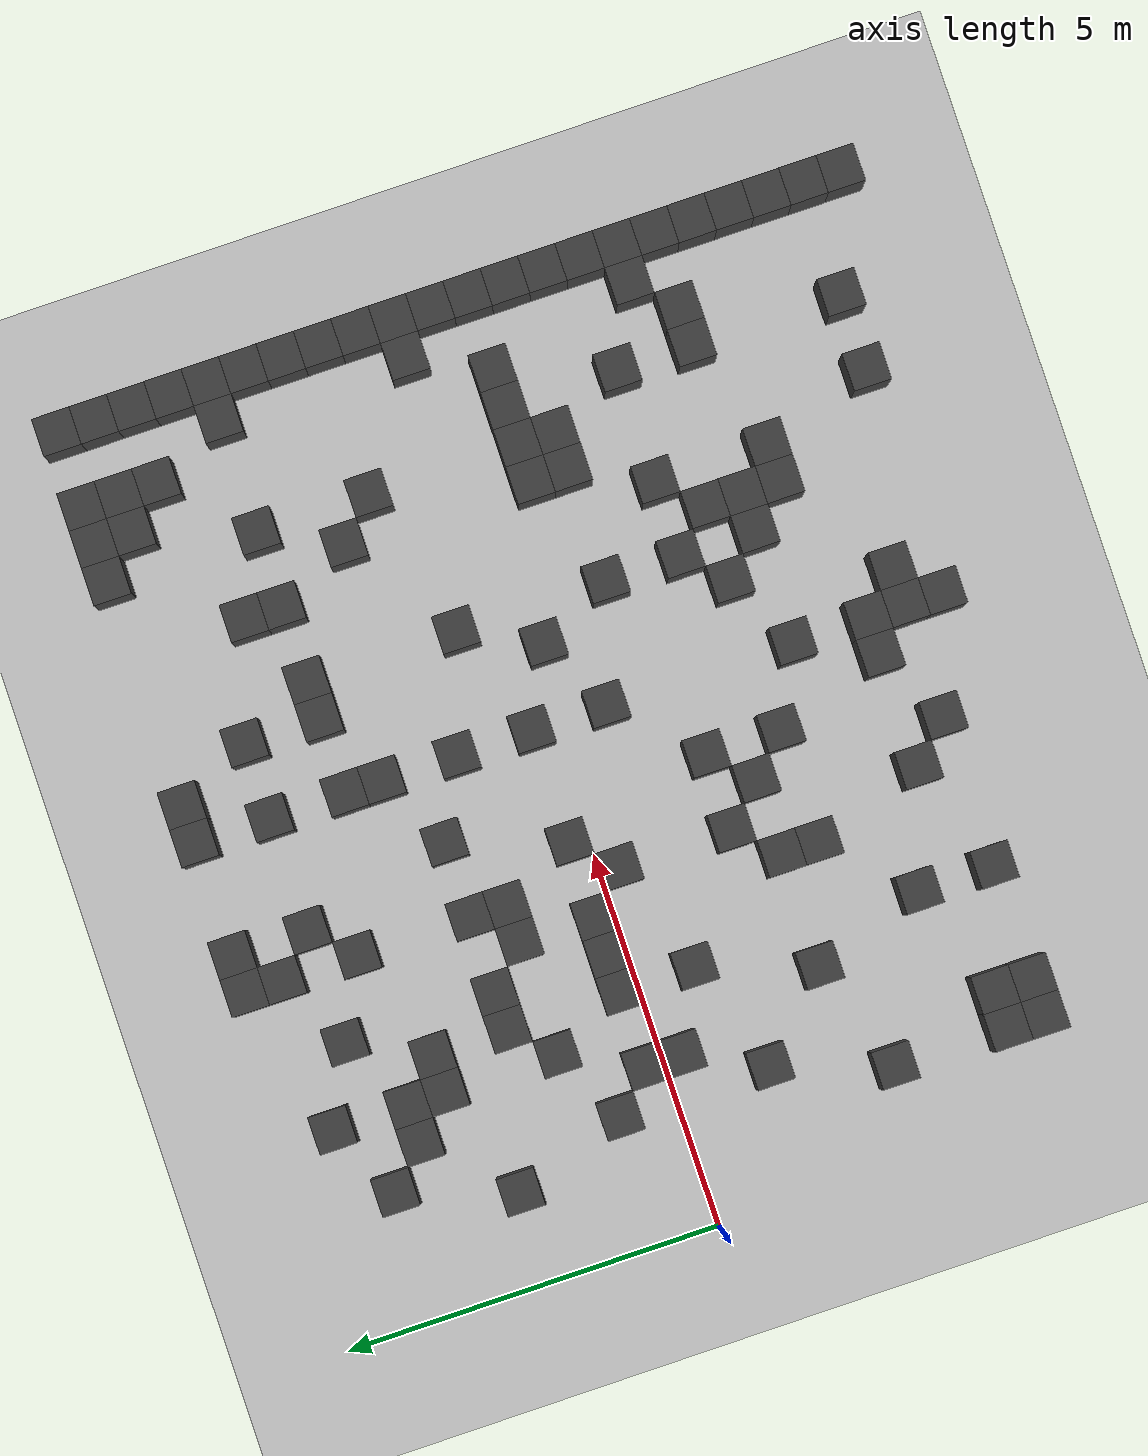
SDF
<sdf version="1.7">
 <world name="map_4818">
  <model name="ground_plane">
   <static>true</static>
   <link name="link">
    <collision name="collision">
     <geometry><plane><normal>0 0 1</normal><size>200 200</size></plane></geometry>
    </collision>
    <visual name="visual">
     <geometry><plane><normal>0 0 1</normal><size>200 200</size></plane></geometry>
     <material><ambient>0.8 0.8 0.8 1</ambient><diffuse>0.8 0.8 0.8 1</diffuse></material>
    </visual>
   </link>
  </model>
  <model name="maze_environment">
   <static>true</static>
   <link name="wall_242">
    <pose>4.750 4.750 0.500 0 0 0</pose>
    <collision name="col"><geometry><box><size>0.5 0.5 1.0</size></box></geometry></collision>
    <visual name="vis">
     <geometry><box><size>0.5 0.5 1.0</size></box></geometry>
     <material><ambient>0.15 0.15 0.15 1</ambient><diffuse>0.25 0.25 0.25 1</diffuse></material>
    </visual>
   </link>
   <link name="wall_243">
    <pose>5.250 4.750 0.500 0 0 0</pose>
    <collision name="col"><geometry><box><size>0.5 0.5 1.0</size></box></geometry></collision>
    <visual name="vis">
     <geometry><box><size>0.5 0.5 1.0</size></box></geometry>
     <material><ambient>0.15 0.15 0.15 1</ambient><diffuse>0.25 0.25 0.25 1</diffuse></material>
    </visual>
   </link>
   <link name="wall_244">
    <pose>6.750 4.750 0.500 0 0 0</pose>
    <collision name="col"><geometry><box><size>0.5 0.5 1.0</size></box></geometry></collision>
    <visual name="vis">
     <geometry><box><size>0.5 0.5 1.0</size></box></geometry>
     <material><ambient>0.15 0.15 0.15 1</ambient><diffuse>0.25 0.25 0.25 1</diffuse></material>
    </visual>
   </link>
   <link name="wall_245">
    <pose>7.250 4.750 0.500 0 0 0</pose>
    <collision name="col"><geometry><box><size>0.5 0.5 1.0</size></box></geometry></collision>
    <visual name="vis">
     <geometry><box><size>0.5 0.5 1.0</size></box></geometry>
     <material><ambient>0.15 0.15 0.15 1</ambient><diffuse>0.25 0.25 0.25 1</diffuse></material>
    </visual>
   </link>
   <link name="wall_246">
    <pose>10.250 4.750 0.500 0 0 0</pose>
    <collision name="col"><geometry><box><size>0.5 0.5 1.0</size></box></geometry></collision>
    <visual name="vis">
     <geometry><box><size>0.5 0.5 1.0</size></box></geometry>
     <material><ambient>0.15 0.15 0.15 1</ambient><diffuse>0.25 0.25 0.25 1</diffuse></material>
    </visual>
   </link>
   <link name="wall_247">
    <pose>10.750 4.750 0.500 0 0 0</pose>
    <collision name="col"><geometry><box><size>0.5 0.5 1.0</size></box></geometry></collision>
    <visual name="vis">
     <geometry><box><size>0.5 0.5 1.0</size></box></geometry>
     <material><ambient>0.15 0.15 0.15 1</ambient><diffuse>0.25 0.25 0.25 1</diffuse></material>
    </visual>
   </link>
   <link name="wall_248">
    <pose>11.250 4.750 0.500 0 0 0</pose>
    <collision name="col"><geometry><box><size>0.5 0.5 1.0</size></box></geometry></collision>
    <visual name="vis">
     <geometry><box><size>0.5 0.5 1.0</size></box></geometry>
     <material><ambient>0.15 0.15 0.15 1</ambient><diffuse>0.25 0.25 0.25 1</diffuse></material>
    </visual>
   </link>
   <link name="wall_249">
    <pose>12.250 4.750 0.500 0 0 0</pose>
    <collision name="col"><geometry><box><size>0.5 0.5 1.0</size></box></geometry></collision>
    <visual name="vis">
     <geometry><box><size>0.5 0.5 1.0</size></box></geometry>
     <material><ambient>0.15 0.15 0.15 1</ambient><diffuse>0.25 0.25 0.25 1</diffuse></material>
    </visual>
   </link>
   <link name="wall_258">
    <pose>2.750 4.250 0.500 0 0 0</pose>
    <collision name="col"><geometry><box><size>0.5 0.5 1.0</size></box></geometry></collision>
    <visual name="vis">
     <geometry><box><size>0.5 0.5 1.0</size></box></geometry>
     <material><ambient>0.15 0.15 0.15 1</ambient><diffuse>0.25 0.25 0.25 1</diffuse></material>
    </visual>
   </link>
   <link name="wall_259">
    <pose>4.750 4.250 0.500 0 0 0</pose>
    <collision name="col"><geometry><box><size>0.5 0.5 1.0</size></box></geometry></collision>
    <visual name="vis">
     <geometry><box><size>0.5 0.5 1.0</size></box></geometry>
     <material><ambient>0.15 0.15 0.15 1</ambient><diffuse>0.25 0.25 0.25 1</diffuse></material>
    </visual>
   </link>
   <link name="wall_260">
    <pose>10.750 4.250 0.500 0 0 0</pose>
    <collision name="col"><geometry><box><size>0.5 0.5 1.0</size></box></geometry></collision>
    <visual name="vis">
     <geometry><box><size>0.5 0.5 1.0</size></box></geometry>
     <material><ambient>0.15 0.15 0.15 1</ambient><diffuse>0.25 0.25 0.25 1</diffuse></material>
    </visual>
   </link>
   <link name="wall_261">
    <pose>11.250 4.250 0.500 0 0 0</pose>
    <collision name="col"><geometry><box><size>0.5 0.5 1.0</size></box></geometry></collision>
    <visual name="vis">
     <geometry><box><size>0.5 0.5 1.0</size></box></geometry>
     <material><ambient>0.15 0.15 0.15 1</ambient><diffuse>0.25 0.25 0.25 1</diffuse></material>
    </visual>
   </link>
   <link name="wall_262">
    <pose>12.250 4.250 0.500 0 0 0</pose>
    <collision name="col"><geometry><box><size>0.5 0.5 1.0</size></box></geometry></collision>
    <visual name="vis">
     <geometry><box><size>0.5 0.5 1.0</size></box></geometry>
     <material><ambient>0.15 0.15 0.15 1</ambient><diffuse>0.25 0.25 0.25 1</diffuse></material>
    </visual>
   </link>
   <link name="wall_272">
    <pose>1.750 3.750 0.500 0 0 0</pose>
    <collision name="col"><geometry><box><size>0.5 0.5 1.0</size></box></geometry></collision>
    <visual name="vis">
     <geometry><box><size>0.5 0.5 1.0</size></box></geometry>
     <material><ambient>0.15 0.15 0.15 1</ambient><diffuse>0.25 0.25 0.25 1</diffuse></material>
    </visual>
   </link>
   <link name="wall_273">
    <pose>3.750 3.750 0.500 0 0 0</pose>
    <collision name="col"><geometry><box><size>0.5 0.5 1.0</size></box></geometry></collision>
    <visual name="vis">
     <geometry><box><size>0.5 0.5 1.0</size></box></geometry>
     <material><ambient>0.15 0.15 0.15 1</ambient><diffuse>0.25 0.25 0.25 1</diffuse></material>
    </visual>
   </link>
   <link name="wall_274">
    <pose>5.250 3.750 0.500 0 0 0</pose>
    <collision name="col"><geometry><box><size>0.5 0.5 1.0</size></box></geometry></collision>
    <visual name="vis">
     <geometry><box><size>0.5 0.5 1.0</size></box></geometry>
     <material><ambient>0.15 0.15 0.15 1</ambient><diffuse>0.25 0.25 0.25 1</diffuse></material>
    </visual>
   </link>
   <link name="wall_275">
    <pose>6.750 3.750 0.500 0 0 0</pose>
    <collision name="col"><geometry><box><size>0.5 0.5 1.0</size></box></geometry></collision>
    <visual name="vis">
     <geometry><box><size>0.5 0.5 1.0</size></box></geometry>
     <material><ambient>0.15 0.15 0.15 1</ambient><diffuse>0.25 0.25 0.25 1</diffuse></material>
    </visual>
   </link>
   <link name="wall_276">
    <pose>7.750 3.750 0.500 0 0 0</pose>
    <collision name="col"><geometry><box><size>0.5 0.5 1.0</size></box></geometry></collision>
    <visual name="vis">
     <geometry><box><size>0.5 0.5 1.0</size></box></geometry>
     <material><ambient>0.15 0.15 0.15 1</ambient><diffuse>0.25 0.25 0.25 1</diffuse></material>
    </visual>
   </link>
   <link name="wall_277">
    <pose>11.250 3.750 0.500 0 0 0</pose>
    <collision name="col"><geometry><box><size>0.5 0.5 1.0</size></box></geometry></collision>
    <visual name="vis">
     <geometry><box><size>0.5 0.5 1.0</size></box></geometry>
     <material><ambient>0.15 0.15 0.15 1</ambient><diffuse>0.25 0.25 0.25 1</diffuse></material>
    </visual>
   </link>
   <link name="wall_278">
    <pose>12.250 3.750 0.500 0 0 0</pose>
    <collision name="col"><geometry><box><size>0.5 0.5 1.0</size></box></geometry></collision>
    <visual name="vis">
     <geometry><box><size>0.5 0.5 1.0</size></box></geometry>
     <material><ambient>0.15 0.15 0.15 1</ambient><diffuse>0.25 0.25 0.25 1</diffuse></material>
    </visual>
   </link>
   <link name="wall_281">
    <pose>2.250 3.250 0.500 0 0 0</pose>
    <collision name="col"><geometry><box><size>0.5 0.5 1.0</size></box></geometry></collision>
    <visual name="vis">
     <geometry><box><size>0.5 0.5 1.0</size></box></geometry>
     <material><ambient>0.15 0.15 0.15 1</ambient><diffuse>0.25 0.25 0.25 1</diffuse></material>
    </visual>
   </link>
   <link name="wall_282">
    <pose>2.750 3.250 0.500 0 0 0</pose>
    <collision name="col"><geometry><box><size>0.5 0.5 1.0</size></box></geometry></collision>
    <visual name="vis">
     <geometry><box><size>0.5 0.5 1.0</size></box></geometry>
     <material><ambient>0.15 0.15 0.15 1</ambient><diffuse>0.25 0.25 0.25 1</diffuse></material>
    </visual>
   </link>
   <link name="wall_283">
    <pose>4.750 3.250 0.500 0 0 0</pose>
    <collision name="col"><geometry><box><size>0.5 0.5 1.0</size></box></geometry></collision>
    <visual name="vis">
     <geometry><box><size>0.5 0.5 1.0</size></box></geometry>
     <material><ambient>0.15 0.15 0.15 1</ambient><diffuse>0.25 0.25 0.25 1</diffuse></material>
    </visual>
   </link>
   <link name="wall_284">
    <pose>9.250 3.250 0.500 0 0 0</pose>
    <collision name="col"><geometry><box><size>0.5 0.5 1.0</size></box></geometry></collision>
    <visual name="vis">
     <geometry><box><size>0.5 0.5 1.0</size></box></geometry>
     <material><ambient>0.15 0.15 0.15 1</ambient><diffuse>0.25 0.25 0.25 1</diffuse></material>
    </visual>
   </link>
   <link name="wall_285">
    <pose>12.250 3.250 0.500 0 0 0</pose>
    <collision name="col"><geometry><box><size>0.5 0.5 1.0</size></box></geometry></collision>
    <visual name="vis">
     <geometry><box><size>0.5 0.5 1.0</size></box></geometry>
     <material><ambient>0.15 0.15 0.15 1</ambient><diffuse>0.25 0.25 0.25 1</diffuse></material>
    </visual>
   </link>
   <link name="wall_290">
    <pose>2.750 2.750 0.500 0 0 0</pose>
    <collision name="col"><geometry><box><size>0.5 0.5 1.0</size></box></geometry></collision>
    <visual name="vis">
     <geometry><box><size>0.5 0.5 1.0</size></box></geometry>
     <material><ambient>0.15 0.15 0.15 1</ambient><diffuse>0.25 0.25 0.25 1</diffuse></material>
    </visual>
   </link>
   <link name="wall_291">
    <pose>3.250 2.750 0.500 0 0 0</pose>
    <collision name="col"><geometry><box><size>0.5 0.5 1.0</size></box></geometry></collision>
    <visual name="vis">
     <geometry><box><size>0.5 0.5 1.0</size></box></geometry>
     <material><ambient>0.15 0.15 0.15 1</ambient><diffuse>0.25 0.25 0.25 1</diffuse></material>
    </visual>
   </link>
   <link name="wall_292">
    <pose>6.750 2.750 0.500 0 0 0</pose>
    <collision name="col"><geometry><box><size>0.5 0.5 1.0</size></box></geometry></collision>
    <visual name="vis">
     <geometry><box><size>0.5 0.5 1.0</size></box></geometry>
     <material><ambient>0.15 0.15 0.15 1</ambient><diffuse>0.25 0.25 0.25 1</diffuse></material>
    </visual>
   </link>
   <link name="wall_293">
    <pose>7.750 2.750 0.500 0 0 0</pose>
    <collision name="col"><geometry><box><size>0.5 0.5 1.0</size></box></geometry></collision>
    <visual name="vis">
     <geometry><box><size>0.5 0.5 1.0</size></box></geometry>
     <material><ambient>0.15 0.15 0.15 1</ambient><diffuse>0.25 0.25 0.25 1</diffuse></material>
    </visual>
   </link>
   <link name="wall_294">
    <pose>8.250 2.750 0.500 0 0 0</pose>
    <collision name="col"><geometry><box><size>0.5 0.5 1.0</size></box></geometry></collision>
    <visual name="vis">
     <geometry><box><size>0.5 0.5 1.0</size></box></geometry>
     <material><ambient>0.15 0.15 0.15 1</ambient><diffuse>0.25 0.25 0.25 1</diffuse></material>
    </visual>
   </link>
   <link name="wall_295">
    <pose>9.250 2.750 0.500 0 0 0</pose>
    <collision name="col"><geometry><box><size>0.5 0.5 1.0</size></box></geometry></collision>
    <visual name="vis">
     <geometry><box><size>0.5 0.5 1.0</size></box></geometry>
     <material><ambient>0.15 0.15 0.15 1</ambient><diffuse>0.25 0.25 0.25 1</diffuse></material>
    </visual>
   </link>
   <link name="wall_296">
    <pose>10.250 2.750 0.500 0 0 0</pose>
    <collision name="col"><geometry><box><size>0.5 0.5 1.0</size></box></geometry></collision>
    <visual name="vis">
     <geometry><box><size>0.5 0.5 1.0</size></box></geometry>
     <material><ambient>0.15 0.15 0.15 1</ambient><diffuse>0.25 0.25 0.25 1</diffuse></material>
    </visual>
   </link>
   <link name="wall_297">
    <pose>11.750 2.750 0.500 0 0 0</pose>
    <collision name="col"><geometry><box><size>0.5 0.5 1.0</size></box></geometry></collision>
    <visual name="vis">
     <geometry><box><size>0.5 0.5 1.0</size></box></geometry>
     <material><ambient>0.15 0.15 0.15 1</ambient><diffuse>0.25 0.25 0.25 1</diffuse></material>
    </visual>
   </link>
   <link name="wall_298">
    <pose>12.250 2.750 0.500 0 0 0</pose>
    <collision name="col"><geometry><box><size>0.5 0.5 1.0</size></box></geometry></collision>
    <visual name="vis">
     <geometry><box><size>0.5 0.5 1.0</size></box></geometry>
     <material><ambient>0.15 0.15 0.15 1</ambient><diffuse>0.25 0.25 0.25 1</diffuse></material>
    </visual>
   </link>
   <link name="wall_305">
    <pose>1.250 2.250 0.500 0 0 0</pose>
    <collision name="col"><geometry><box><size>0.5 0.5 1.0</size></box></geometry></collision>
    <visual name="vis">
     <geometry><box><size>0.5 0.5 1.0</size></box></geometry>
     <material><ambient>0.15 0.15 0.15 1</ambient><diffuse>0.25 0.25 0.25 1</diffuse></material>
    </visual>
   </link>
   <link name="wall_306">
    <pose>6.750 2.250 0.500 0 0 0</pose>
    <collision name="col"><geometry><box><size>0.5 0.5 1.0</size></box></geometry></collision>
    <visual name="vis">
     <geometry><box><size>0.5 0.5 1.0</size></box></geometry>
     <material><ambient>0.15 0.15 0.15 1</ambient><diffuse>0.25 0.25 0.25 1</diffuse></material>
    </visual>
   </link>
   <link name="wall_307">
    <pose>12.250 2.250 0.500 0 0 0</pose>
    <collision name="col"><geometry><box><size>0.5 0.5 1.0</size></box></geometry></collision>
    <visual name="vis">
     <geometry><box><size>0.5 0.5 1.0</size></box></geometry>
     <material><ambient>0.15 0.15 0.15 1</ambient><diffuse>0.25 0.25 0.25 1</diffuse></material>
    </visual>
   </link>
   <link name="wall_314">
    <pose>3.250 1.750 0.500 0 0 0</pose>
    <collision name="col"><geometry><box><size>0.5 0.5 1.0</size></box></geometry></collision>
    <visual name="vis">
     <geometry><box><size>0.5 0.5 1.0</size></box></geometry>
     <material><ambient>0.15 0.15 0.15 1</ambient><diffuse>0.25 0.25 0.25 1</diffuse></material>
    </visual>
   </link>
   <link name="wall_315">
    <pose>3.750 1.750 0.500 0 0 0</pose>
    <collision name="col"><geometry><box><size>0.5 0.5 1.0</size></box></geometry></collision>
    <visual name="vis">
     <geometry><box><size>0.5 0.5 1.0</size></box></geometry>
     <material><ambient>0.15 0.15 0.15 1</ambient><diffuse>0.25 0.25 0.25 1</diffuse></material>
    </visual>
   </link>
   <link name="wall_316">
    <pose>4.750 1.750 0.500 0 0 0</pose>
    <collision name="col"><geometry><box><size>0.5 0.5 1.0</size></box></geometry></collision>
    <visual name="vis">
     <geometry><box><size>0.5 0.5 1.0</size></box></geometry>
     <material><ambient>0.15 0.15 0.15 1</ambient><diffuse>0.25 0.25 0.25 1</diffuse></material>
    </visual>
   </link>
   <link name="wall_317">
    <pose>5.750 1.750 0.500 0 0 0</pose>
    <collision name="col"><geometry><box><size>0.5 0.5 1.0</size></box></geometry></collision>
    <visual name="vis">
     <geometry><box><size>0.5 0.5 1.0</size></box></geometry>
     <material><ambient>0.15 0.15 0.15 1</ambient><diffuse>0.25 0.25 0.25 1</diffuse></material>
    </visual>
   </link>
   <link name="wall_318">
    <pose>9.750 1.750 0.500 0 0 0</pose>
    <collision name="col"><geometry><box><size>0.5 0.5 1.0</size></box></geometry></collision>
    <visual name="vis">
     <geometry><box><size>0.5 0.5 1.0</size></box></geometry>
     <material><ambient>0.15 0.15 0.15 1</ambient><diffuse>0.25 0.25 0.25 1</diffuse></material>
    </visual>
   </link>
   <link name="wall_319">
    <pose>12.250 1.750 0.500 0 0 0</pose>
    <collision name="col"><geometry><box><size>0.5 0.5 1.0</size></box></geometry></collision>
    <visual name="vis">
     <geometry><box><size>0.5 0.5 1.0</size></box></geometry>
     <material><ambient>0.15 0.15 0.15 1</ambient><diffuse>0.25 0.25 0.25 1</diffuse></material>
    </visual>
   </link>
   <link name="wall_329">
    <pose>2.750 1.250 0.500 0 0 0</pose>
    <collision name="col"><geometry><box><size>0.5 0.5 1.0</size></box></geometry></collision>
    <visual name="vis">
     <geometry><box><size>0.5 0.5 1.0</size></box></geometry>
     <material><ambient>0.15 0.15 0.15 1</ambient><diffuse>0.25 0.25 0.25 1</diffuse></material>
    </visual>
   </link>
   <link name="wall_330">
    <pose>4.250 1.250 0.500 0 0 0</pose>
    <collision name="col"><geometry><box><size>0.5 0.5 1.0</size></box></geometry></collision>
    <visual name="vis">
     <geometry><box><size>0.5 0.5 1.0</size></box></geometry>
     <material><ambient>0.15 0.15 0.15 1</ambient><diffuse>0.25 0.25 0.25 1</diffuse></material>
    </visual>
   </link>
   <link name="wall_331">
    <pose>4.750 1.250 0.500 0 0 0</pose>
    <collision name="col"><geometry><box><size>0.5 0.5 1.0</size></box></geometry></collision>
    <visual name="vis">
     <geometry><box><size>0.5 0.5 1.0</size></box></geometry>
     <material><ambient>0.15 0.15 0.15 1</ambient><diffuse>0.25 0.25 0.25 1</diffuse></material>
    </visual>
   </link>
   <link name="wall_332">
    <pose>6.750 1.250 0.500 0 0 0</pose>
    <collision name="col"><geometry><box><size>0.5 0.5 1.0</size></box></geometry></collision>
    <visual name="vis">
     <geometry><box><size>0.5 0.5 1.0</size></box></geometry>
     <material><ambient>0.15 0.15 0.15 1</ambient><diffuse>0.25 0.25 0.25 1</diffuse></material>
    </visual>
   </link>
   <link name="wall_333">
    <pose>10.250 1.250 0.500 0 0 0</pose>
    <collision name="col"><geometry><box><size>0.5 0.5 1.0</size></box></geometry></collision>
    <visual name="vis">
     <geometry><box><size>0.5 0.5 1.0</size></box></geometry>
     <material><ambient>0.15 0.15 0.15 1</ambient><diffuse>0.25 0.25 0.25 1</diffuse></material>
    </visual>
   </link>
   <link name="wall_334">
    <pose>12.250 1.250 0.500 0 0 0</pose>
    <collision name="col"><geometry><box><size>0.5 0.5 1.0</size></box></geometry></collision>
    <visual name="vis">
     <geometry><box><size>0.5 0.5 1.0</size></box></geometry>
     <material><ambient>0.15 0.15 0.15 1</ambient><diffuse>0.25 0.25 0.25 1</diffuse></material>
    </visual>
   </link>
   <link name="wall_343">
    <pose>1.750 0.750 0.500 0 0 0</pose>
    <collision name="col"><geometry><box><size>0.5 0.5 1.0</size></box></geometry></collision>
    <visual name="vis">
     <geometry><box><size>0.5 0.5 1.0</size></box></geometry>
     <material><ambient>0.15 0.15 0.15 1</ambient><diffuse>0.25 0.25 0.25 1</diffuse></material>
    </visual>
   </link>
   <link name="wall_344">
    <pose>8.250 0.750 0.500 0 0 0</pose>
    <collision name="col"><geometry><box><size>0.5 0.5 1.0</size></box></geometry></collision>
    <visual name="vis">
     <geometry><box><size>0.5 0.5 1.0</size></box></geometry>
     <material><ambient>0.15 0.15 0.15 1</ambient><diffuse>0.25 0.25 0.25 1</diffuse></material>
    </visual>
   </link>
   <link name="wall_345">
    <pose>12.250 0.750 0.500 0 0 0</pose>
    <collision name="col"><geometry><box><size>0.5 0.5 1.0</size></box></geometry></collision>
    <visual name="vis">
     <geometry><box><size>0.5 0.5 1.0</size></box></geometry>
     <material><ambient>0.15 0.15 0.15 1</ambient><diffuse>0.25 0.25 0.25 1</diffuse></material>
    </visual>
   </link>
   <link name="wall_351">
    <pose>2.250 0.250 0.500 0 0 0</pose>
    <collision name="col"><geometry><box><size>0.5 0.5 1.0</size></box></geometry></collision>
    <visual name="vis">
     <geometry><box><size>0.5 0.5 1.0</size></box></geometry>
     <material><ambient>0.15 0.15 0.15 1</ambient><diffuse>0.25 0.25 0.25 1</diffuse></material>
    </visual>
   </link>
   <link name="wall_352">
    <pose>3.250 0.250 0.500 0 0 0</pose>
    <collision name="col"><geometry><box><size>0.5 0.5 1.0</size></box></geometry></collision>
    <visual name="vis">
     <geometry><box><size>0.5 0.5 1.0</size></box></geometry>
     <material><ambient>0.15 0.15 0.15 1</ambient><diffuse>0.25 0.25 0.25 1</diffuse></material>
    </visual>
   </link>
   <link name="wall_353">
    <pose>3.750 0.250 0.500 0 0 0</pose>
    <collision name="col"><geometry><box><size>0.5 0.5 1.0</size></box></geometry></collision>
    <visual name="vis">
     <geometry><box><size>0.5 0.5 1.0</size></box></geometry>
     <material><ambient>0.15 0.15 0.15 1</ambient><diffuse>0.25 0.25 0.25 1</diffuse></material>
    </visual>
   </link>
   <link name="wall_354">
    <pose>4.250 0.250 0.500 0 0 0</pose>
    <collision name="col"><geometry><box><size>0.5 0.5 1.0</size></box></geometry></collision>
    <visual name="vis">
     <geometry><box><size>0.5 0.5 1.0</size></box></geometry>
     <material><ambient>0.15 0.15 0.15 1</ambient><diffuse>0.25 0.25 0.25 1</diffuse></material>
    </visual>
   </link>
   <link name="wall_355">
    <pose>5.250 0.250 0.500 0 0 0</pose>
    <collision name="col"><geometry><box><size>0.5 0.5 1.0</size></box></geometry></collision>
    <visual name="vis">
     <geometry><box><size>0.5 0.5 1.0</size></box></geometry>
     <material><ambient>0.15 0.15 0.15 1</ambient><diffuse>0.25 0.25 0.25 1</diffuse></material>
    </visual>
   </link>
   <link name="wall_356">
    <pose>6.750 0.250 0.500 0 0 0</pose>
    <collision name="col"><geometry><box><size>0.5 0.5 1.0</size></box></geometry></collision>
    <visual name="vis">
     <geometry><box><size>0.5 0.5 1.0</size></box></geometry>
     <material><ambient>0.15 0.15 0.15 1</ambient><diffuse>0.25 0.25 0.25 1</diffuse></material>
    </visual>
   </link>
   <link name="wall_357">
    <pose>11.750 0.250 0.500 0 0 0</pose>
    <collision name="col"><geometry><box><size>0.5 0.5 1.0</size></box></geometry></collision>
    <visual name="vis">
     <geometry><box><size>0.5 0.5 1.0</size></box></geometry>
     <material><ambient>0.15 0.15 0.15 1</ambient><diffuse>0.25 0.25 0.25 1</diffuse></material>
    </visual>
   </link>
   <link name="wall_358">
    <pose>12.250 0.250 0.500 0 0 0</pose>
    <collision name="col"><geometry><box><size>0.5 0.5 1.0</size></box></geometry></collision>
    <visual name="vis">
     <geometry><box><size>0.5 0.5 1.0</size></box></geometry>
     <material><ambient>0.15 0.15 0.15 1</ambient><diffuse>0.25 0.25 0.25 1</diffuse></material>
    </visual>
   </link>
   <link name="wall_364">
    <pose>2.250 -0.250 0.500 0 0 0</pose>
    <collision name="col"><geometry><box><size>0.5 0.5 1.0</size></box></geometry></collision>
    <visual name="vis">
     <geometry><box><size>0.5 0.5 1.0</size></box></geometry>
     <material><ambient>0.15 0.15 0.15 1</ambient><diffuse>0.25 0.25 0.25 1</diffuse></material>
    </visual>
   </link>
   <link name="wall_365">
    <pose>4.750 -0.250 0.500 0 0 0</pose>
    <collision name="col"><geometry><box><size>0.5 0.5 1.0</size></box></geometry></collision>
    <visual name="vis">
     <geometry><box><size>0.5 0.5 1.0</size></box></geometry>
     <material><ambient>0.15 0.15 0.15 1</ambient><diffuse>0.25 0.25 0.25 1</diffuse></material>
    </visual>
   </link>
   <link name="wall_366">
    <pose>7.750 -0.250 0.500 0 0 0</pose>
    <collision name="col"><geometry><box><size>0.5 0.5 1.0</size></box></geometry></collision>
    <visual name="vis">
     <geometry><box><size>0.5 0.5 1.0</size></box></geometry>
     <material><ambient>0.15 0.15 0.15 1</ambient><diffuse>0.25 0.25 0.25 1</diffuse></material>
    </visual>
   </link>
   <link name="wall_367">
    <pose>12.250 -0.250 0.500 0 0 0</pose>
    <collision name="col"><geometry><box><size>0.5 0.5 1.0</size></box></geometry></collision>
    <visual name="vis">
     <geometry><box><size>0.5 0.5 1.0</size></box></geometry>
     <material><ambient>0.15 0.15 0.15 1</ambient><diffuse>0.25 0.25 0.25 1</diffuse></material>
    </visual>
   </link>
   <link name="wall_374">
    <pose>3.250 -0.750 0.500 0 0 0</pose>
    <collision name="col"><geometry><box><size>0.5 0.5 1.0</size></box></geometry></collision>
    <visual name="vis">
     <geometry><box><size>0.5 0.5 1.0</size></box></geometry>
     <material><ambient>0.15 0.15 0.15 1</ambient><diffuse>0.25 0.25 0.25 1</diffuse></material>
    </visual>
   </link>
   <link name="wall_375">
    <pose>6.750 -0.750 0.500 0 0 0</pose>
    <collision name="col"><geometry><box><size>0.5 0.5 1.0</size></box></geometry></collision>
    <visual name="vis">
     <geometry><box><size>0.5 0.5 1.0</size></box></geometry>
     <material><ambient>0.15 0.15 0.15 1</ambient><diffuse>0.25 0.25 0.25 1</diffuse></material>
    </visual>
   </link>
   <link name="wall_376">
    <pose>9.750 -0.750 0.500 0 0 0</pose>
    <collision name="col"><geometry><box><size>0.5 0.5 1.0</size></box></geometry></collision>
    <visual name="vis">
     <geometry><box><size>0.5 0.5 1.0</size></box></geometry>
     <material><ambient>0.15 0.15 0.15 1</ambient><diffuse>0.25 0.25 0.25 1</diffuse></material>
    </visual>
   </link>
   <link name="wall_377">
    <pose>10.250 -0.750 0.500 0 0 0</pose>
    <collision name="col"><geometry><box><size>0.5 0.5 1.0</size></box></geometry></collision>
    <visual name="vis">
     <geometry><box><size>0.5 0.5 1.0</size></box></geometry>
     <material><ambient>0.15 0.15 0.15 1</ambient><diffuse>0.25 0.25 0.25 1</diffuse></material>
    </visual>
   </link>
   <link name="wall_378">
    <pose>10.750 -0.750 0.500 0 0 0</pose>
    <collision name="col"><geometry><box><size>0.5 0.5 1.0</size></box></geometry></collision>
    <visual name="vis">
     <geometry><box><size>0.5 0.5 1.0</size></box></geometry>
     <material><ambient>0.15 0.15 0.15 1</ambient><diffuse>0.25 0.25 0.25 1</diffuse></material>
    </visual>
   </link>
   <link name="wall_379">
    <pose>11.250 -0.750 0.500 0 0 0</pose>
    <collision name="col"><geometry><box><size>0.5 0.5 1.0</size></box></geometry></collision>
    <visual name="vis">
     <geometry><box><size>0.5 0.5 1.0</size></box></geometry>
     <material><ambient>0.15 0.15 0.15 1</ambient><diffuse>0.25 0.25 0.25 1</diffuse></material>
    </visual>
   </link>
   <link name="wall_380">
    <pose>12.250 -0.750 0.500 0 0 0</pose>
    <collision name="col"><geometry><box><size>0.5 0.5 1.0</size></box></geometry></collision>
    <visual name="vis">
     <geometry><box><size>0.5 0.5 1.0</size></box></geometry>
     <material><ambient>0.15 0.15 0.15 1</ambient><diffuse>0.25 0.25 0.25 1</diffuse></material>
    </visual>
   </link>
   <link name="wall_385">
    <pose>1.750 -1.250 0.500 0 0 0</pose>
    <collision name="col"><geometry><box><size>0.5 0.5 1.0</size></box></geometry></collision>
    <visual name="vis">
     <geometry><box><size>0.5 0.5 1.0</size></box></geometry>
     <material><ambient>0.15 0.15 0.15 1</ambient><diffuse>0.25 0.25 0.25 1</diffuse></material>
    </visual>
   </link>
   <link name="wall_386">
    <pose>8.250 -1.250 0.500 0 0 0</pose>
    <collision name="col"><geometry><box><size>0.5 0.5 1.0</size></box></geometry></collision>
    <visual name="vis">
     <geometry><box><size>0.5 0.5 1.0</size></box></geometry>
     <material><ambient>0.15 0.15 0.15 1</ambient><diffuse>0.25 0.25 0.25 1</diffuse></material>
    </visual>
   </link>
   <link name="wall_387">
    <pose>9.750 -1.250 0.500 0 0 0</pose>
    <collision name="col"><geometry><box><size>0.5 0.5 1.0</size></box></geometry></collision>
    <visual name="vis">
     <geometry><box><size>0.5 0.5 1.0</size></box></geometry>
     <material><ambient>0.15 0.15 0.15 1</ambient><diffuse>0.25 0.25 0.25 1</diffuse></material>
    </visual>
   </link>
   <link name="wall_388">
    <pose>10.250 -1.250 0.500 0 0 0</pose>
    <collision name="col"><geometry><box><size>0.5 0.5 1.0</size></box></geometry></collision>
    <visual name="vis">
     <geometry><box><size>0.5 0.5 1.0</size></box></geometry>
     <material><ambient>0.15 0.15 0.15 1</ambient><diffuse>0.25 0.25 0.25 1</diffuse></material>
    </visual>
   </link>
   <link name="wall_389">
    <pose>12.250 -1.250 0.500 0 0 0</pose>
    <collision name="col"><geometry><box><size>0.5 0.5 1.0</size></box></geometry></collision>
    <visual name="vis">
     <geometry><box><size>0.5 0.5 1.0</size></box></geometry>
     <material><ambient>0.15 0.15 0.15 1</ambient><diffuse>0.25 0.25 0.25 1</diffuse></material>
    </visual>
   </link>
   <link name="wall_399">
    <pose>4.750 -1.750 0.500 0 0 0</pose>
    <collision name="col"><geometry><box><size>0.5 0.5 1.0</size></box></geometry></collision>
    <visual name="vis">
     <geometry><box><size>0.5 0.5 1.0</size></box></geometry>
     <material><ambient>0.15 0.15 0.15 1</ambient><diffuse>0.25 0.25 0.25 1</diffuse></material>
    </visual>
   </link>
   <link name="wall_400">
    <pose>5.750 -1.750 0.500 0 0 0</pose>
    <collision name="col"><geometry><box><size>0.5 0.5 1.0</size></box></geometry></collision>
    <visual name="vis">
     <geometry><box><size>0.5 0.5 1.0</size></box></geometry>
     <material><ambient>0.15 0.15 0.15 1</ambient><diffuse>0.25 0.25 0.25 1</diffuse></material>
    </visual>
   </link>
   <link name="wall_401">
    <pose>12.250 -1.750 0.500 0 0 0</pose>
    <collision name="col"><geometry><box><size>0.5 0.5 1.0</size></box></geometry></collision>
    <visual name="vis">
     <geometry><box><size>0.5 0.5 1.0</size></box></geometry>
     <material><ambient>0.15 0.15 0.15 1</ambient><diffuse>0.25 0.25 0.25 1</diffuse></material>
    </visual>
   </link>
   <link name="wall_408">
    <pose>2.750 -2.250 0.500 0 0 0</pose>
    <collision name="col"><geometry><box><size>0.5 0.5 1.0</size></box></geometry></collision>
    <visual name="vis">
     <geometry><box><size>0.5 0.5 1.0</size></box></geometry>
     <material><ambient>0.15 0.15 0.15 1</ambient><diffuse>0.25 0.25 0.25 1</diffuse></material>
    </visual>
   </link>
   <link name="wall_409">
    <pose>4.250 -2.250 0.500 0 0 0</pose>
    <collision name="col"><geometry><box><size>0.5 0.5 1.0</size></box></geometry></collision>
    <visual name="vis">
     <geometry><box><size>0.5 0.5 1.0</size></box></geometry>
     <material><ambient>0.15 0.15 0.15 1</ambient><diffuse>0.25 0.25 0.25 1</diffuse></material>
    </visual>
   </link>
   <link name="wall_410">
    <pose>5.250 -2.250 0.500 0 0 0</pose>
    <collision name="col"><geometry><box><size>0.5 0.5 1.0</size></box></geometry></collision>
    <visual name="vis">
     <geometry><box><size>0.5 0.5 1.0</size></box></geometry>
     <material><ambient>0.15 0.15 0.15 1</ambient><diffuse>0.25 0.25 0.25 1</diffuse></material>
    </visual>
   </link>
   <link name="wall_411">
    <pose>8.250 -2.250 0.500 0 0 0</pose>
    <collision name="col"><geometry><box><size>0.5 0.5 1.0</size></box></geometry></collision>
    <visual name="vis">
     <geometry><box><size>0.5 0.5 1.0</size></box></geometry>
     <material><ambient>0.15 0.15 0.15 1</ambient><diffuse>0.25 0.25 0.25 1</diffuse></material>
    </visual>
   </link>
   <link name="wall_412">
    <pose>9.250 -2.250 0.500 0 0 0</pose>
    <collision name="col"><geometry><box><size>0.5 0.5 1.0</size></box></geometry></collision>
    <visual name="vis">
     <geometry><box><size>0.5 0.5 1.0</size></box></geometry>
     <material><ambient>0.15 0.15 0.15 1</ambient><diffuse>0.25 0.25 0.25 1</diffuse></material>
    </visual>
   </link>
   <link name="wall_413">
    <pose>10.750 -2.250 0.500 0 0 0</pose>
    <collision name="col"><geometry><box><size>0.5 0.5 1.0</size></box></geometry></collision>
    <visual name="vis">
     <geometry><box><size>0.5 0.5 1.0</size></box></geometry>
     <material><ambient>0.15 0.15 0.15 1</ambient><diffuse>0.25 0.25 0.25 1</diffuse></material>
    </visual>
   </link>
   <link name="wall_414">
    <pose>12.250 -2.250 0.500 0 0 0</pose>
    <collision name="col"><geometry><box><size>0.5 0.5 1.0</size></box></geometry></collision>
    <visual name="vis">
     <geometry><box><size>0.5 0.5 1.0</size></box></geometry>
     <material><ambient>0.15 0.15 0.15 1</ambient><diffuse>0.25 0.25 0.25 1</diffuse></material>
    </visual>
   </link>
   <link name="wall_423">
    <pose>1.250 -2.750 0.500 0 0 0</pose>
    <collision name="col"><geometry><box><size>0.5 0.5 1.0</size></box></geometry></collision>
    <visual name="vis">
     <geometry><box><size>0.5 0.5 1.0</size></box></geometry>
     <material><ambient>0.15 0.15 0.15 1</ambient><diffuse>0.25 0.25 0.25 1</diffuse></material>
    </visual>
   </link>
   <link name="wall_424">
    <pose>4.250 -2.750 0.500 0 0 0</pose>
    <collision name="col"><geometry><box><size>0.5 0.5 1.0</size></box></geometry></collision>
    <visual name="vis">
     <geometry><box><size>0.5 0.5 1.0</size></box></geometry>
     <material><ambient>0.15 0.15 0.15 1</ambient><diffuse>0.25 0.25 0.25 1</diffuse></material>
    </visual>
   </link>
   <link name="wall_425">
    <pose>5.750 -2.750 0.500 0 0 0</pose>
    <collision name="col"><geometry><box><size>0.5 0.5 1.0</size></box></geometry></collision>
    <visual name="vis">
     <geometry><box><size>0.5 0.5 1.0</size></box></geometry>
     <material><ambient>0.15 0.15 0.15 1</ambient><diffuse>0.25 0.25 0.25 1</diffuse></material>
    </visual>
   </link>
   <link name="wall_426">
    <pose>7.750 -2.750 0.500 0 0 0</pose>
    <collision name="col"><geometry><box><size>0.5 0.5 1.0</size></box></geometry></collision>
    <visual name="vis">
     <geometry><box><size>0.5 0.5 1.0</size></box></geometry>
     <material><ambient>0.15 0.15 0.15 1</ambient><diffuse>0.25 0.25 0.25 1</diffuse></material>
    </visual>
   </link>
   <link name="wall_427">
    <pose>8.750 -2.750 0.500 0 0 0</pose>
    <collision name="col"><geometry><box><size>0.5 0.5 1.0</size></box></geometry></collision>
    <visual name="vis">
     <geometry><box><size>0.5 0.5 1.0</size></box></geometry>
     <material><ambient>0.15 0.15 0.15 1</ambient><diffuse>0.25 0.25 0.25 1</diffuse></material>
    </visual>
   </link>
   <link name="wall_428">
    <pose>11.750 -2.750 0.500 0 0 0</pose>
    <collision name="col"><geometry><box><size>0.5 0.5 1.0</size></box></geometry></collision>
    <visual name="vis">
     <geometry><box><size>0.5 0.5 1.0</size></box></geometry>
     <material><ambient>0.15 0.15 0.15 1</ambient><diffuse>0.25 0.25 0.25 1</diffuse></material>
    </visual>
   </link>
   <link name="wall_429">
    <pose>12.250 -2.750 0.500 0 0 0</pose>
    <collision name="col"><geometry><box><size>0.5 0.5 1.0</size></box></geometry></collision>
    <visual name="vis">
     <geometry><box><size>0.5 0.5 1.0</size></box></geometry>
     <material><ambient>0.15 0.15 0.15 1</ambient><diffuse>0.25 0.25 0.25 1</diffuse></material>
    </visual>
   </link>
   <link name="wall_438">
    <pose>6.750 -3.250 0.500 0 0 0</pose>
    <collision name="col"><geometry><box><size>0.5 0.5 1.0</size></box></geometry></collision>
    <visual name="vis">
     <geometry><box><size>0.5 0.5 1.0</size></box></geometry>
     <material><ambient>0.15 0.15 0.15 1</ambient><diffuse>0.25 0.25 0.25 1</diffuse></material>
    </visual>
   </link>
   <link name="wall_439">
    <pose>8.250 -3.250 0.500 0 0 0</pose>
    <collision name="col"><geometry><box><size>0.5 0.5 1.0</size></box></geometry></collision>
    <visual name="vis">
     <geometry><box><size>0.5 0.5 1.0</size></box></geometry>
     <material><ambient>0.15 0.15 0.15 1</ambient><diffuse>0.25 0.25 0.25 1</diffuse></material>
    </visual>
   </link>
   <link name="wall_440">
    <pose>8.750 -3.250 0.500 0 0 0</pose>
    <collision name="col"><geometry><box><size>0.5 0.5 1.0</size></box></geometry></collision>
    <visual name="vis">
     <geometry><box><size>0.5 0.5 1.0</size></box></geometry>
     <material><ambient>0.15 0.15 0.15 1</ambient><diffuse>0.25 0.25 0.25 1</diffuse></material>
    </visual>
   </link>
   <link name="wall_441">
    <pose>10.750 -3.250 0.500 0 0 0</pose>
    <collision name="col"><geometry><box><size>0.5 0.5 1.0</size></box></geometry></collision>
    <visual name="vis">
     <geometry><box><size>0.5 0.5 1.0</size></box></geometry>
     <material><ambient>0.15 0.15 0.15 1</ambient><diffuse>0.25 0.25 0.25 1</diffuse></material>
    </visual>
   </link>
   <link name="wall_442">
    <pose>11.250 -3.250 0.500 0 0 0</pose>
    <collision name="col"><geometry><box><size>0.5 0.5 1.0</size></box></geometry></collision>
    <visual name="vis">
     <geometry><box><size>0.5 0.5 1.0</size></box></geometry>
     <material><ambient>0.15 0.15 0.15 1</ambient><diffuse>0.25 0.25 0.25 1</diffuse></material>
    </visual>
   </link>
   <link name="wall_443">
    <pose>12.250 -3.250 0.500 0 0 0</pose>
    <collision name="col"><geometry><box><size>0.5 0.5 1.0</size></box></geometry></collision>
    <visual name="vis">
     <geometry><box><size>0.5 0.5 1.0</size></box></geometry>
     <material><ambient>0.15 0.15 0.15 1</ambient><diffuse>0.25 0.25 0.25 1</diffuse></material>
    </visual>
   </link>
   <link name="wall_451">
    <pose>3.250 -3.750 0.500 0 0 0</pose>
    <collision name="col"><geometry><box><size>0.5 0.5 1.0</size></box></geometry></collision>
    <visual name="vis">
     <geometry><box><size>0.5 0.5 1.0</size></box></geometry>
     <material><ambient>0.15 0.15 0.15 1</ambient><diffuse>0.25 0.25 0.25 1</diffuse></material>
    </visual>
   </link>
   <link name="wall_452">
    <pose>8.750 -3.750 0.500 0 0 0</pose>
    <collision name="col"><geometry><box><size>0.5 0.5 1.0</size></box></geometry></collision>
    <visual name="vis">
     <geometry><box><size>0.5 0.5 1.0</size></box></geometry>
     <material><ambient>0.15 0.15 0.15 1</ambient><diffuse>0.25 0.25 0.25 1</diffuse></material>
    </visual>
   </link>
   <link name="wall_453">
    <pose>9.250 -3.750 0.500 0 0 0</pose>
    <collision name="col"><geometry><box><size>0.5 0.5 1.0</size></box></geometry></collision>
    <visual name="vis">
     <geometry><box><size>0.5 0.5 1.0</size></box></geometry>
     <material><ambient>0.15 0.15 0.15 1</ambient><diffuse>0.25 0.25 0.25 1</diffuse></material>
    </visual>
   </link>
   <link name="wall_454">
    <pose>12.250 -3.750 0.500 0 0 0</pose>
    <collision name="col"><geometry><box><size>0.5 0.5 1.0</size></box></geometry></collision>
    <visual name="vis">
     <geometry><box><size>0.5 0.5 1.0</size></box></geometry>
     <material><ambient>0.15 0.15 0.15 1</ambient><diffuse>0.25 0.25 0.25 1</diffuse></material>
    </visual>
   </link>
   <link name="wall_462">
    <pose>1.250 -4.250 0.500 0 0 0</pose>
    <collision name="col"><geometry><box><size>0.5 0.5 1.0</size></box></geometry></collision>
    <visual name="vis">
     <geometry><box><size>0.5 0.5 1.0</size></box></geometry>
     <material><ambient>0.15 0.15 0.15 1</ambient><diffuse>0.25 0.25 0.25 1</diffuse></material>
    </visual>
   </link>
   <link name="wall_463">
    <pose>1.750 -4.250 0.500 0 0 0</pose>
    <collision name="col"><geometry><box><size>0.5 0.5 1.0</size></box></geometry></collision>
    <visual name="vis">
     <geometry><box><size>0.5 0.5 1.0</size></box></geometry>
     <material><ambient>0.15 0.15 0.15 1</ambient><diffuse>0.25 0.25 0.25 1</diffuse></material>
    </visual>
   </link>
   <link name="wall_464">
    <pose>4.750 -4.250 0.500 0 0 0</pose>
    <collision name="col"><geometry><box><size>0.5 0.5 1.0</size></box></geometry></collision>
    <visual name="vis">
     <geometry><box><size>0.5 0.5 1.0</size></box></geometry>
     <material><ambient>0.15 0.15 0.15 1</ambient><diffuse>0.25 0.25 0.25 1</diffuse></material>
    </visual>
   </link>
   <link name="wall_465">
    <pose>6.250 -4.250 0.500 0 0 0</pose>
    <collision name="col"><geometry><box><size>0.5 0.5 1.0</size></box></geometry></collision>
    <visual name="vis">
     <geometry><box><size>0.5 0.5 1.0</size></box></geometry>
     <material><ambient>0.15 0.15 0.15 1</ambient><diffuse>0.25 0.25 0.25 1</diffuse></material>
    </visual>
   </link>
   <link name="wall_466">
    <pose>6.750 -4.250 0.500 0 0 0</pose>
    <collision name="col"><geometry><box><size>0.5 0.5 1.0</size></box></geometry></collision>
    <visual name="vis">
     <geometry><box><size>0.5 0.5 1.0</size></box></geometry>
     <material><ambient>0.15 0.15 0.15 1</ambient><diffuse>0.25 0.25 0.25 1</diffuse></material>
    </visual>
   </link>
   <link name="wall_467">
    <pose>12.250 -4.250 0.500 0 0 0</pose>
    <collision name="col"><geometry><box><size>0.5 0.5 1.0</size></box></geometry></collision>
    <visual name="vis">
     <geometry><box><size>0.5 0.5 1.0</size></box></geometry>
     <material><ambient>0.15 0.15 0.15 1</ambient><diffuse>0.25 0.25 0.25 1</diffuse></material>
    </visual>
   </link>
   <link name="wall_478">
    <pose>1.250 -4.750 0.500 0 0 0</pose>
    <collision name="col"><geometry><box><size>0.5 0.5 1.0</size></box></geometry></collision>
    <visual name="vis">
     <geometry><box><size>0.5 0.5 1.0</size></box></geometry>
     <material><ambient>0.15 0.15 0.15 1</ambient><diffuse>0.25 0.25 0.25 1</diffuse></material>
    </visual>
   </link>
   <link name="wall_479">
    <pose>1.750 -4.750 0.500 0 0 0</pose>
    <collision name="col"><geometry><box><size>0.5 0.5 1.0</size></box></geometry></collision>
    <visual name="vis">
     <geometry><box><size>0.5 0.5 1.0</size></box></geometry>
     <material><ambient>0.15 0.15 0.15 1</ambient><diffuse>0.25 0.25 0.25 1</diffuse></material>
    </visual>
   </link>
   <link name="wall_480">
    <pose>3.250 -4.750 0.500 0 0 0</pose>
    <collision name="col"><geometry><box><size>0.5 0.5 1.0</size></box></geometry></collision>
    <visual name="vis">
     <geometry><box><size>0.5 0.5 1.0</size></box></geometry>
     <material><ambient>0.15 0.15 0.15 1</ambient><diffuse>0.25 0.25 0.25 1</diffuse></material>
    </visual>
   </link>
   <link name="wall_481">
    <pose>5.250 -4.750 0.500 0 0 0</pose>
    <collision name="col"><geometry><box><size>0.5 0.5 1.0</size></box></geometry></collision>
    <visual name="vis">
     <geometry><box><size>0.5 0.5 1.0</size></box></geometry>
     <material><ambient>0.15 0.15 0.15 1</ambient><diffuse>0.25 0.25 0.25 1</diffuse></material>
    </visual>
   </link>
   <link name="wall_482">
    <pose>6.750 -4.750 0.500 0 0 0</pose>
    <collision name="col"><geometry><box><size>0.5 0.5 1.0</size></box></geometry></collision>
    <visual name="vis">
     <geometry><box><size>0.5 0.5 1.0</size></box></geometry>
     <material><ambient>0.15 0.15 0.15 1</ambient><diffuse>0.25 0.25 0.25 1</diffuse></material>
    </visual>
   </link>
   <link name="wall_483">
    <pose>7.250 -4.750 0.500 0 0 0</pose>
    <collision name="col"><geometry><box><size>0.5 0.5 1.0</size></box></geometry></collision>
    <visual name="vis">
     <geometry><box><size>0.5 0.5 1.0</size></box></geometry>
     <material><ambient>0.15 0.15 0.15 1</ambient><diffuse>0.25 0.25 0.25 1</diffuse></material>
    </visual>
   </link>
   <link name="wall_484">
    <pose>12.250 -4.750 0.500 0 0 0</pose>
    <collision name="col"><geometry><box><size>0.5 0.5 1.0</size></box></geometry></collision>
    <visual name="vis">
     <geometry><box><size>0.5 0.5 1.0</size></box></geometry>
     <material><ambient>0.15 0.15 0.15 1</ambient><diffuse>0.25 0.25 0.25 1</diffuse></material>
    </visual>
   </link>
   <link name="wall_493">
    <pose>6.750 -5.250 0.500 0 0 0</pose>
    <collision name="col"><geometry><box><size>0.5 0.5 1.0</size></box></geometry></collision>
    <visual name="vis">
     <geometry><box><size>0.5 0.5 1.0</size></box></geometry>
     <material><ambient>0.15 0.15 0.15 1</ambient><diffuse>0.25 0.25 0.25 1</diffuse></material>
    </visual>
   </link>
   <link name="wall_494">
    <pose>9.750 -5.250 0.500 0 0 0</pose>
    <collision name="col"><geometry><box><size>0.5 0.5 1.0</size></box></geometry></collision>
    <visual name="vis">
     <geometry><box><size>0.5 0.5 1.0</size></box></geometry>
     <material><ambient>0.15 0.15 0.15 1</ambient><diffuse>0.25 0.25 0.25 1</diffuse></material>
    </visual>
   </link>
   <link name="wall_495">
    <pose>10.750 -5.250 0.500 0 0 0</pose>
    <collision name="col"><geometry><box><size>0.5 0.5 1.0</size></box></geometry></collision>
    <visual name="vis">
     <geometry><box><size>0.5 0.5 1.0</size></box></geometry>
     <material><ambient>0.15 0.15 0.15 1</ambient><diffuse>0.25 0.25 0.25 1</diffuse></material>
    </visual>
   </link>
   <link name="wall_496">
    <pose>12.250 -5.250 0.500 0 0 0</pose>
    <collision name="col"><geometry><box><size>0.5 0.5 1.0</size></box></geometry></collision>
    <visual name="vis">
     <geometry><box><size>0.5 0.5 1.0</size></box></geometry>
     <material><ambient>0.15 0.15 0.15 1</ambient><diffuse>0.25 0.25 0.25 1</diffuse></material>
    </visual>
   </link>
   <link name="wall_507">
    <pose>12.250 -5.750 0.500 0 0 0</pose>
    <collision name="col"><geometry><box><size>0.5 0.5 1.0</size></box></geometry></collision>
    <visual name="vis">
     <geometry><box><size>0.5 0.5 1.0</size></box></geometry>
     <material><ambient>0.15 0.15 0.15 1</ambient><diffuse>0.25 0.25 0.25 1</diffuse></material>
    </visual>
   </link>
  </model>
 </world>
</sdf>
